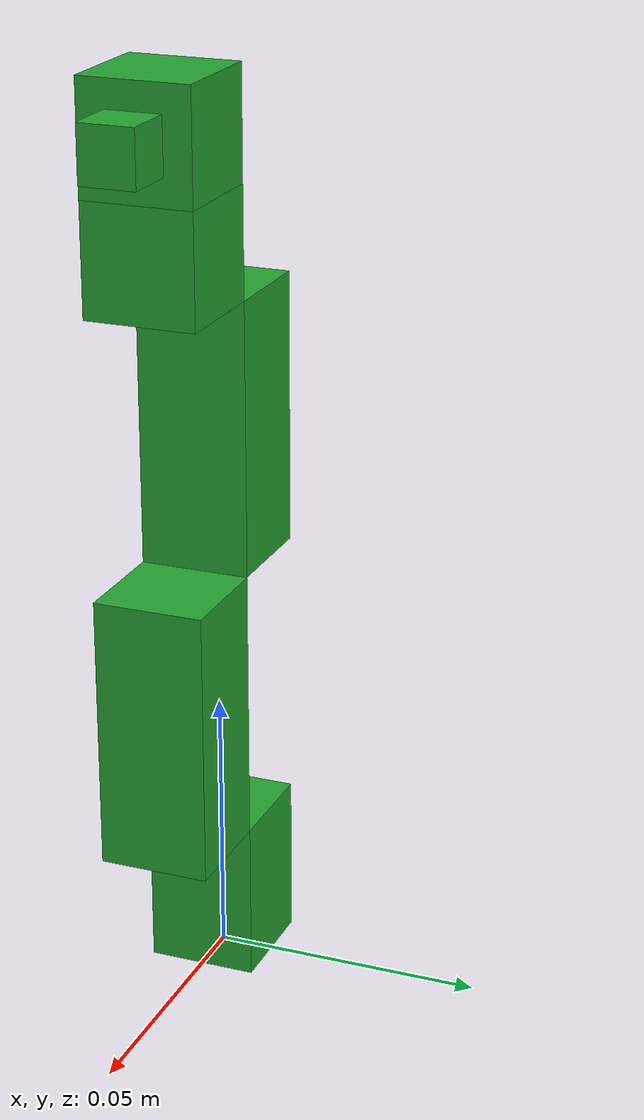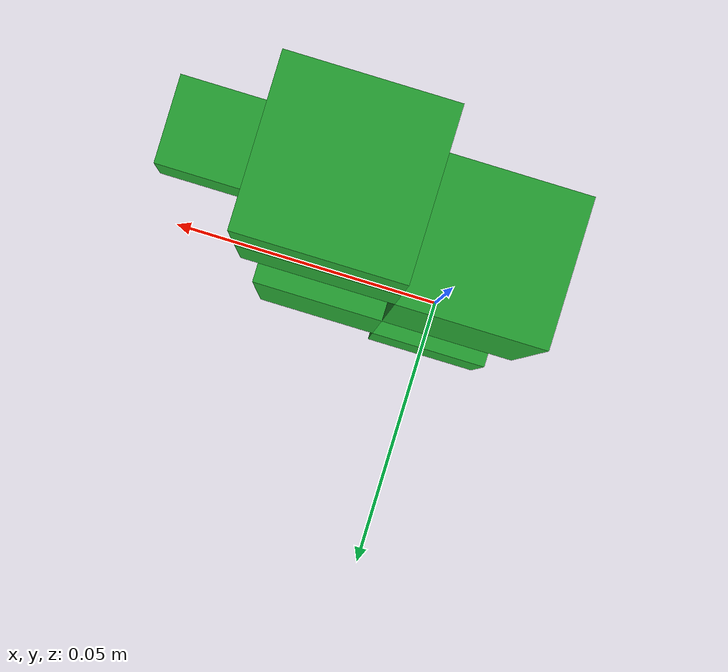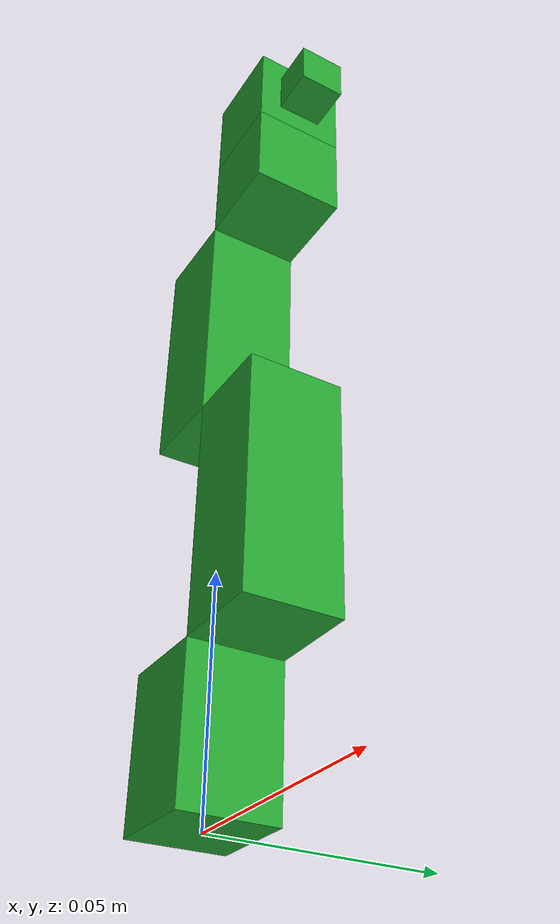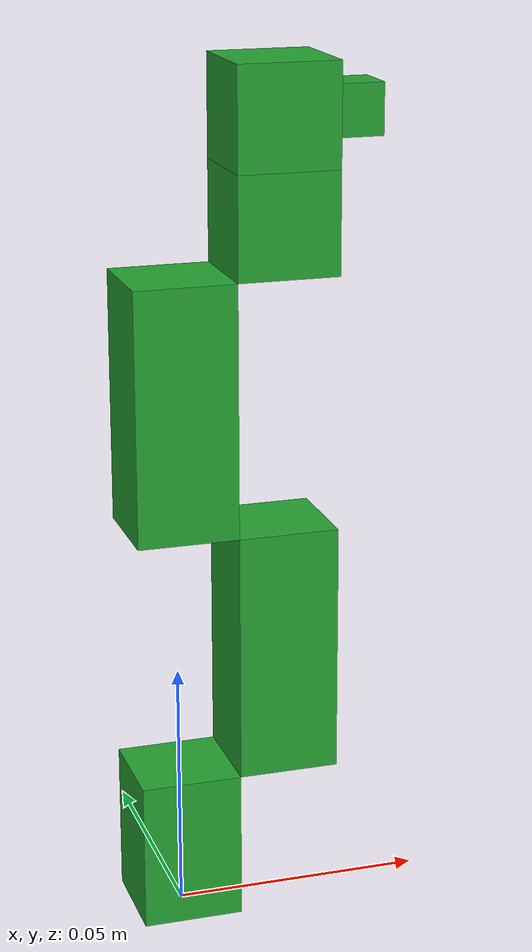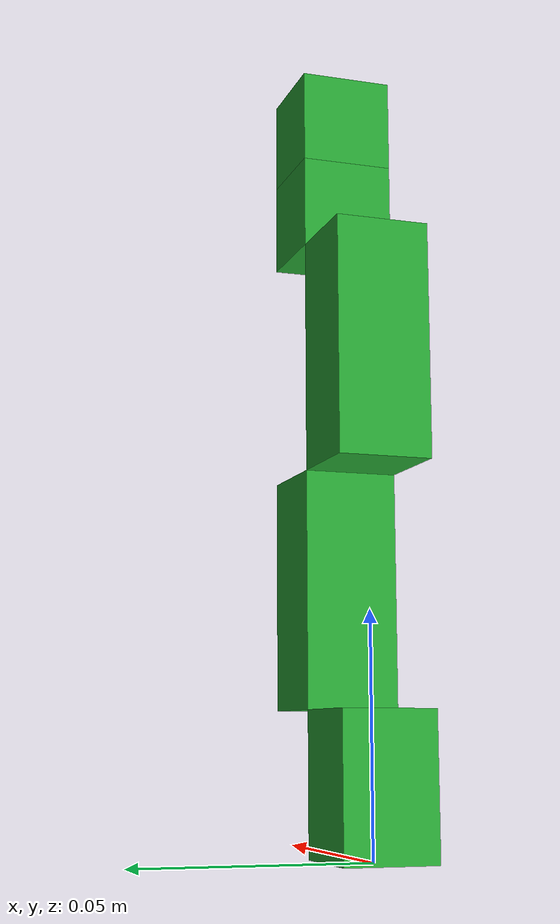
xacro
<?xml version="1.0"?>
<robot xmlns:xacro="http://www.ros.org/wiki/xacro">

    <link name="robot_base"></link>

    <xacro:property name="robot_link_0_side" value="0.02" />
    <xacro:property name="robot_link_0_length" value="0.03" />
    <link name="robot_link_0">
        <visual>
            <origin xyz="0 0 ${robot_link_0_length / 2}" rpy="0 0 0" />
            <geometry>
                <box size="${robot_link_0_side} ${robot_link_0_side} ${robot_link_0_length}" />
            </geometry>
            <material name="green" />
        </visual>
        <collision>
            <origin xyz="0 0 ${robot_link_0_length / 2}" rpy="0 0 0" />
            <geometry>
                <box size="${robot_link_0_side} ${robot_link_0_side} ${robot_link_0_length}" />
            </geometry>
        </collision>
        <xacro:inertial_box mass="0.1" x="${robot_link_0_side}" y="${robot_link_0_side}" z="${robot_link_0_length}">
            <origin xyz="0 0 ${robot_link_0_side/2}" rpy="0 0 0"/>
        </xacro:inertial_box>
    </link>

    <xacro:property name="robot_link_1_side" value="0.02" />
    <xacro:property name="robot_link_1_length" value="0.05" />
    <link name="robot_link_1">
        <visual>
            <origin xyz="0 0 ${robot_link_1_length / 2}" rpy="0 0 0" />
            <geometry>
                <box size="${robot_link_1_side} ${robot_link_1_side} ${robot_link_1_length}" />
            </geometry>
            <material name="green" />
        </visual>
        <collision>
            <origin xyz="0 0 ${robot_link_1_length / 2}" rpy="0 0 0" />
            <geometry>
                <box size="${robot_link_1_side} ${robot_link_1_side} ${robot_link_1_length}" />
            </geometry>
        </collision>
        <xacro:inertial_box mass="0.1" x="${robot_link_1_side}" y="${robot_link_1_side}" z="${robot_link_1_length}">
            <origin xyz="0 0 ${robot_link_1_side/2}" rpy="0 0 0"/>
        </xacro:inertial_box>
    </link>

    <xacro:property name="robot_link_2_side" value="0.02" />
    <xacro:property name="robot_link_2_length" value="0.05" />
    <link name="robot_link_2">
        <visual>
            <origin xyz="0 0 ${robot_link_2_length / 2}" rpy="0 0 0" />
            <geometry>
                <box size="${robot_link_2_side} ${robot_link_2_side} ${robot_link_2_length}" />
            </geometry>
            <material name="green" />
        </visual>
        <collision>
            <origin xyz="0 0 ${robot_link_2_length / 2}" rpy="0 0 0" />
            <geometry>
                <box size="${robot_link_2_side} ${robot_link_2_side} ${robot_link_2_length}" />
            </geometry>
        </collision>
        <xacro:inertial_box mass="0.1" x="${robot_link_2_side}" y="${robot_link_2_side}" z="${robot_link_2_length}">
            <origin xyz="0 0 ${robot_link_2_side/2}" rpy="0 0 0"/>
        </xacro:inertial_box>
    </link>

    <xacro:property name="robot_link_3_side" value="0.02" />
    <xacro:property name="robot_link_3_length" value="0.02" />
    <link name="robot_link_3">
        <visual>
            <origin xyz="0 0 ${robot_link_3_length / 2}" rpy="0 0 0" />
            <geometry>
                <box size="${robot_link_3_side} ${robot_link_3_side} ${robot_link_3_length}" />
            </geometry>
            <material name="green" />
        </visual>
        <collision>
            <origin xyz="0 0 ${robot_link_3_length / 2}" rpy="0 0 0" />
            <geometry>
                <box size="${robot_link_3_side} ${robot_link_1_side} ${robot_link_3_length}" />
            </geometry>
        </collision>
        <xacro:inertial_box mass="0.1" x="${robot_link_1_side}" y="${robot_link_3_side}" z="${robot_link_3_length}">
            <origin xyz="0 0 ${robot_link_3_side/2}" rpy="0 0 0"/>
        </xacro:inertial_box>
    </link>

<xacro:property name="robot_link_4_side" value="0.02" />
    <xacro:property name="robot_link_4_length" value="0.02" />
    <link name="robot_link_4">
        <visual>
            <origin xyz="0 0 ${robot_link_4_length / 2}" rpy="0 0 0" />
            <geometry>
                <box size="${robot_link_4_side} ${robot_link_4_side} ${robot_link_4_length}" />
            </geometry>
            <material name="green" />
        </visual>
        <collision>
            <origin xyz="0 0 ${robot_link_4_length / 2}" rpy="0 0 0" />
            <geometry>
                <box size="${robot_link_4_side} ${robot_link_4_side} ${robot_link_4_length}" />
            </geometry>
        </collision>
        <xacro:inertial_box mass="0.1" x="${robot_link_4_side}" y="${robot_link_4_side}" z="${robot_link_4_length}">
            <origin xyz="0 0 ${robot_link_4_side/2}" rpy="0 0 0"/>
        </xacro:inertial_box>
    </link>

<xacro:property name="robot_link_5_side" value="0.01" />
    <xacro:property name="robot_link_5_length" value="0.01" />
    <link name="robot_link_5">
        <visual>
            <origin xyz="${robot_link_5_length / 2} 0 0" rpy="0 0 0" />
            <geometry>
                <box size="${robot_link_5_length} ${robot_link_5_side} ${robot_link_5_side}" />
            </geometry>
            <material name="green" />
        </visual>
        <collision>
            <origin xyz="${robot_link_5_length / 2} 0 0" rpy="0 0 0" />
            <geometry>
                <box size="${robot_link_5_length} ${robot_link_5_side} ${robot_link_5_side}" />
            </geometry>
        </collision>
        <xacro:inertial_box mass="0.1" x="${robot_link_5_length}" y="${robot_link_5_side}" z="${robot_link_5_side}">
            <origin xyz="${robot_link_5_length / 2} 0 0" rpy="0 0 0"/>
        </xacro:inertial_box>
    </link>

    <joint name="robot_link_0_joint" type="revolute">
        <origin xyz="0 0 0" rpy="0 0 0"/>
        <parent link="robot_base"/>
        <child link="robot_link_0"/>
        <axis xyz="0 0 1"/>
        <limit lower="${-2*pi}" upper="${2*pi}" velocity="100" effort="100"/>
    </joint>

    <joint name="robot_link_1_joint" type="revolute">
        <origin xyz="${(robot_link_1_side/2)+(robot_link_0_side/2)} 0 ${robot_link_0_length}" rpy="0 0 0"/>
        <parent link="robot_link_0"/>
        <child link="robot_link_1"/>
        <axis xyz="1 0 0"/>
        <limit lower="${-2*pi}" upper="${2*pi}" velocity="100" effort="100"/>
    </joint>

    <joint name="robot_link_2_joint" type="revolute">
        <origin xyz="${-((robot_link_2_side/2)+(robot_link_1_side/2))} 0 ${robot_link_1_length}" rpy="0 0 0"/>
        <parent link="robot_link_1"/>
        <child link="robot_link_2"/>
        <axis xyz="1 0 0"/>
        <limit lower="${-2*pi}" upper="${2*pi}" velocity="100" effort="100"/>
    </joint>

    <joint name="robot_link_3_joint" type="revolute">
        <origin xyz="${(robot_link_3_side/2)+(robot_link_2_side/2)} 0 ${robot_link_2_length}" rpy="0 0 0"/>
        <parent link="robot_link_2"/>
        <child link="robot_link_3"/>
        <axis xyz="1 0 0"/>
        <limit lower="${-2*pi}" upper="${2*pi}" velocity="100" effort="100"/>
    </joint>

    <joint name="robot_link_4_joint" type="revolute">
        <origin xyz="0 0 ${robot_link_3_length}" rpy="0 0 0"/>
        <parent link="robot_link_3"/>
        <child link="robot_link_4"/>
        <axis xyz="0 0 1"/>
        <limit lower="${-2*pi}" upper="${2*pi}" velocity="100" effort="100"/>
    </joint>

    <joint name="robot_link_5_joint" type="revolute">
        <origin xyz="${robot_link_4_side/2} 0 ${robot_link_4_length / 2}" rpy="0 0 0"/>
        <parent link="robot_link_4"/>
        <child link="robot_link_5"/>
        <axis xyz="1 0 0"/>
        <limit lower="${-2*pi}" upper="${2*pi}" velocity="100" effort="100"/>
    </joint>

</robot>
